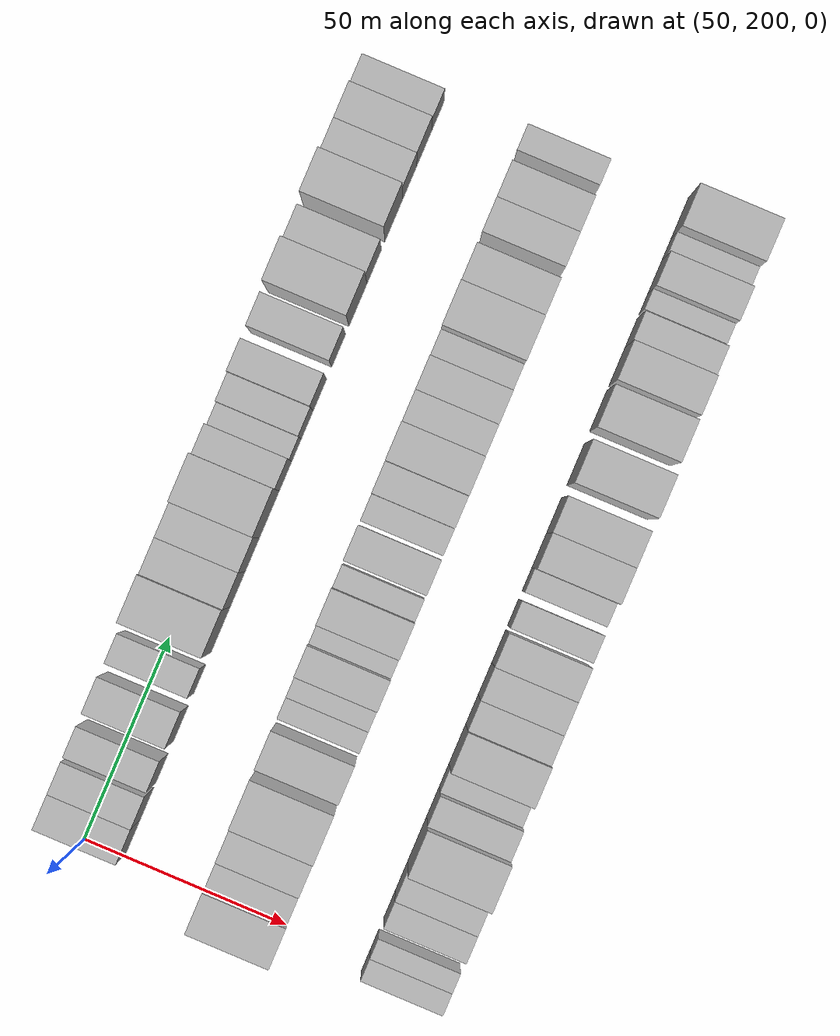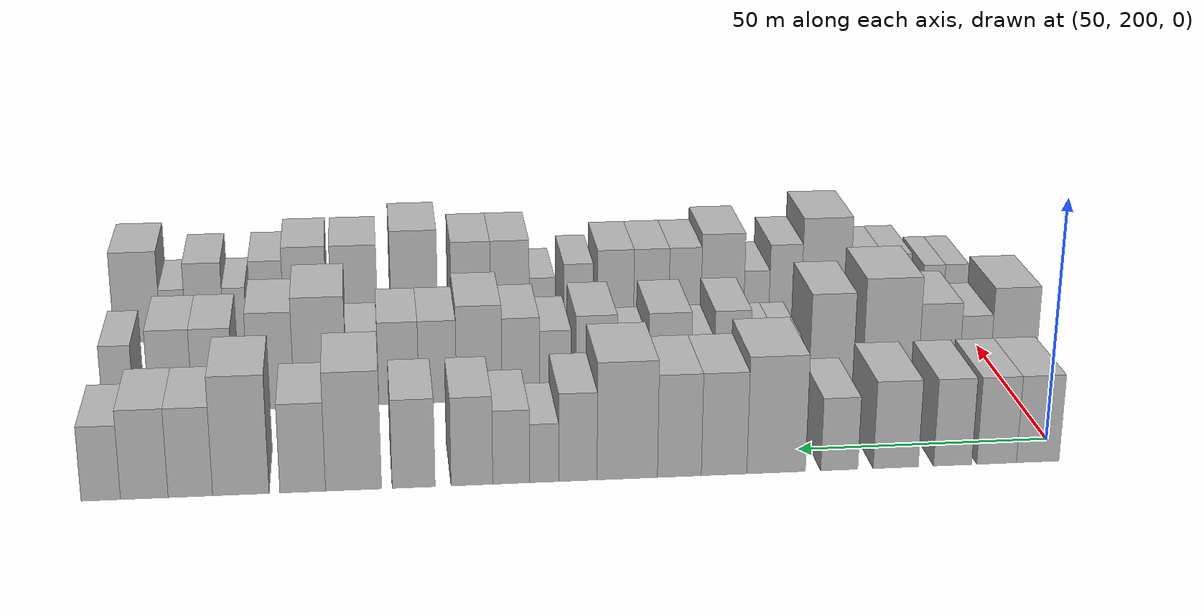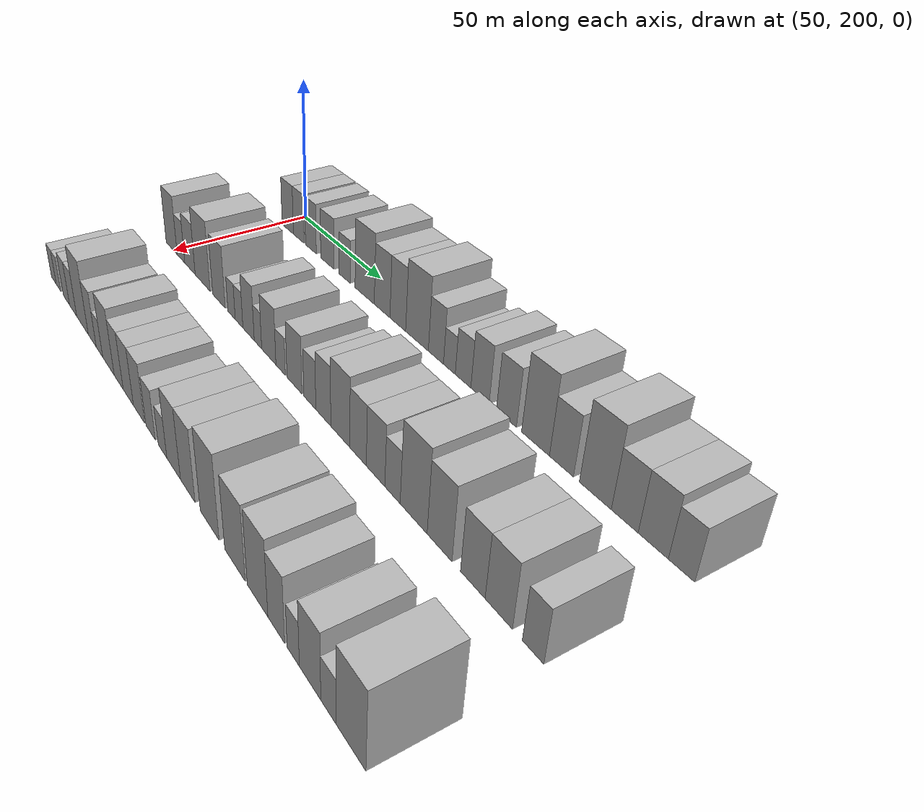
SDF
<sdf version="1.6">
 <world name="default">
  <model name="building_67">
   <static>1</static>
   <pose>50.0000 205.0035 0 0.000000 0.000000 0.000000</pose>
   <link name="link">
    <pose>0 0 9.00 0 0 0</pose>
    <collision name="collision"><geometry><box><size>20.0000 8.4217 18.0000</size></box></geometry></collision>
    <visual name="visual">
     <cast_shadows>0</cast_shadows>
     <geometry><box><size>20.0000 8.4217 18.0000</size></box></geometry>
     <material>
      <script>
       <uri>model://HANNAS_wall/materials/scripts</uri>
       <uri>model://HANNAS_wall/materials/textures</uri>
       <name>vrc/HANNAS_wall</name>
      </script>
     </material>
    </visual>
   </link>
  </model>
  <model name="building_68">
   <static>1</static>
   <pose>50.0000 213.1274 0 0.000000 0.000000 0.000000</pose>
   <link name="link">
    <pose>0 0 9.00 0 0 0</pose>
    <collision name="collision"><geometry><box><size>20.0000 7.8262 18.0000</size></box></geometry></collision>
    <visual name="visual">
     <cast_shadows>0</cast_shadows>
     <geometry><box><size>20.0000 7.8262 18.0000</size></box></geometry>
     <material>
      <script>
       <uri>model://HANNAS_wall/materials/scripts</uri>
       <uri>model://HANNAS_wall/materials/textures</uri>
       <name>vrc/HANNAS_wall</name>
      </script>
     </material>
    </visual>
   </link>
  </model>
  <model name="building_69">
   <static>1</static>
   <pose>50.0000 221.7966 0 0.000000 0.000000 0.000000</pose>
   <link name="link">
    <pose>0 0 9.00 0 0 0</pose>
    <collision name="collision"><geometry><box><size>20.0000 7.5121 18.0000</size></box></geometry></collision>
    <visual name="visual">
     <cast_shadows>0</cast_shadows>
     <geometry><box><size>20.0000 7.5121 18.0000</size></box></geometry>
     <material>
      <script>
       <uri>model://HANNAS_wall/materials/scripts</uri>
       <uri>model://HANNAS_wall/materials/textures</uri>
       <name>vrc/HANNAS_wall</name>
      </script>
     </material>
    </visual>
   </link>
  </model>
  <model name="building_70">
   <static>1</static>
   <pose>50.0000 232.9745 0 0.000000 0.000000 0.000000</pose>
   <link name="link">
    <pose>0 0 9.00 0 0 0</pose>
    <collision name="collision"><geometry><box><size>20.0000 8.8437 18.0000</size></box></geometry></collision>
    <visual name="visual">
     <cast_shadows>0</cast_shadows>
     <geometry><box><size>20.0000 8.8437 18.0000</size></box></geometry>
     <material>
      <script>
       <uri>model://HANNAS_wall/materials/scripts</uri>
       <uri>model://HANNAS_wall/materials/textures</uri>
       <name>vrc/HANNAS_wall</name>
      </script>
     </material>
    </visual>
   </link>
  </model>
  <model name="building_71">
   <static>1</static>
   <pose>50.0000 244.0048 0 0.000000 0.000000 0.000000</pose>
   <link name="link">
    <pose>0 0 7.50 0 0 0</pose>
    <collision name="collision"><geometry><box><size>20.0000 7.2170 15.0000</size></box></geometry></collision>
    <visual name="visual">
     <cast_shadows>0</cast_shadows>
     <geometry><box><size>20.0000 7.2170 15.0000</size></box></geometry>
     <material>
      <script>
       <uri>model://HANNAS_wall/materials/scripts</uri>
       <uri>model://HANNAS_wall/materials/textures</uri>
       <name>vrc/HANNAS_wall</name>
      </script>
     </material>
    </visual>
   </link>
  </model>
  <model name="building_72">
   <static>1</static>
   <pose>50.0000 256.2885 0 0.000000 0.000000 0.000000</pose>
   <link name="link">
    <pose>0 0 12.00 0 0 0</pose>
    <collision name="collision"><geometry><box><size>20.0000 11.3502 24.0000</size></box></geometry></collision>
    <visual name="visual">
     <cast_shadows>0</cast_shadows>
     <geometry><box><size>20.0000 11.3502 24.0000</size></box></geometry>
     <material>
      <script>
       <uri>model://HANNAS_wall/materials/scripts</uri>
       <uri>model://HANNAS_wall/materials/textures</uri>
       <name>vrc/HANNAS_wall</name>
      </script>
     </material>
    </visual>
   </link>
  </model>
  <model name="building_73">
   <static>1</static>
   <pose>50.0000 266.3604 0 0.000000 0.000000 0.000000</pose>
   <link name="link">
    <pose>0 0 10.50 0 0 0</pose>
    <collision name="collision"><geometry><box><size>20.0000 8.7935 21.0000</size></box></geometry></collision>
    <visual name="visual">
     <cast_shadows>0</cast_shadows>
     <geometry><box><size>20.0000 8.7935 21.0000</size></box></geometry>
     <material>
      <script>
       <uri>model://HANNAS_wall/materials/scripts</uri>
       <uri>model://HANNAS_wall/materials/textures</uri>
       <name>vrc/HANNAS_wall</name>
      </script>
     </material>
    </visual>
   </link>
  </model>
  <model name="building_74">
   <static>1</static>
   <pose>50.0000 274.9698 0 0.000000 0.000000 0.000000</pose>
   <link name="link">
    <pose>0 0 10.50 0 0 0</pose>
    <collision name="collision"><geometry><box><size>20.0000 8.4253 21.0000</size></box></geometry></collision>
    <visual name="visual">
     <cast_shadows>0</cast_shadows>
     <geometry><box><size>20.0000 8.4253 21.0000</size></box></geometry>
     <material>
      <script>
       <uri>model://HANNAS_wall/materials/scripts</uri>
       <uri>model://HANNAS_wall/materials/textures</uri>
       <name>vrc/HANNAS_wall</name>
      </script>
     </material>
    </visual>
   </link>
  </model>
  <model name="building_75">
   <static>1</static>
   <pose>50.0000 284.9682 0 0.000000 0.000000 0.000000</pose>
   <link name="link">
    <pose>0 0 12.00 0 0 0</pose>
    <collision name="collision"><geometry><box><size>20.0000 11.5714 24.0000</size></box></geometry></collision>
    <visual name="visual">
     <cast_shadows>0</cast_shadows>
     <geometry><box><size>20.0000 11.5714 24.0000</size></box></geometry>
     <material>
      <script>
       <uri>model://HANNAS_wall/materials/scripts</uri>
       <uri>model://HANNAS_wall/materials/textures</uri>
       <name>vrc/HANNAS_wall</name>
      </script>
     </material>
    </visual>
   </link>
  </model>
  <model name="building_76">
   <static>1</static>
   <pose>50.0000 294.4051 0 0.000000 0.000000 0.000000</pose>
   <link name="link">
    <pose>0 0 9.00 0 0 0</pose>
    <collision name="collision"><geometry><box><size>20.0000 7.3024 18.0000</size></box></geometry></collision>
    <visual name="visual">
     <cast_shadows>0</cast_shadows>
     <geometry><box><size>20.0000 7.3024 18.0000</size></box></geometry>
     <material>
      <script>
       <uri>model://HANNAS_wall/materials/scripts</uri>
       <uri>model://HANNAS_wall/materials/textures</uri>
       <name>vrc/HANNAS_wall</name>
      </script>
     </material>
    </visual>
   </link>
  </model>
  <model name="building_77">
   <static>1</static>
   <pose>50.0000 300.8055 0 0.000000 0.000000 0.000000</pose>
   <link name="link">
    <pose>0 0 6.00 0 0 0</pose>
    <collision name="collision"><geometry><box><size>20.0000 5.4984 12.0000</size></box></geometry></collision>
    <visual name="visual">
     <cast_shadows>0</cast_shadows>
     <geometry><box><size>20.0000 5.4984 12.0000</size></box></geometry>
     <material>
      <script>
       <uri>model://HANNAS_wall/materials/scripts</uri>
       <uri>model://HANNAS_wall/materials/textures</uri>
       <name>vrc/HANNAS_wall</name>
      </script>
     </material>
    </visual>
   </link>
  </model>
  <model name="building_78">
   <static>1</static>
   <pose>50.0000 307.0646 0 0.000000 0.000000 0.000000</pose>
   <link name="link">
    <pose>0 0 7.50 0 0 0</pose>
    <collision name="collision"><geometry><box><size>20.0000 7.0199 15.0000</size></box></geometry></collision>
    <visual name="visual">
     <cast_shadows>0</cast_shadows>
     <geometry><box><size>20.0000 7.0199 15.0000</size></box></geometry>
     <material>
      <script>
       <uri>model://HANNAS_wall/materials/scripts</uri>
       <uri>model://HANNAS_wall/materials/textures</uri>
       <name>vrc/HANNAS_wall</name>
      </script>
     </material>
    </visual>
   </link>
  </model>
  <model name="building_79">
   <static>1</static>
   <pose>50.0000 314.5173 0 0.000000 0.000000 0.000000</pose>
   <link name="link">
    <pose>0 0 9.00 0 0 0</pose>
    <collision name="collision"><geometry><box><size>20.0000 7.8854 18.0000</size></box></geometry></collision>
    <visual name="visual">
     <cast_shadows>0</cast_shadows>
     <geometry><box><size>20.0000 7.8854 18.0000</size></box></geometry>
     <material>
      <script>
       <uri>model://HANNAS_wall/materials/scripts</uri>
       <uri>model://HANNAS_wall/materials/textures</uri>
       <name>vrc/HANNAS_wall</name>
      </script>
     </material>
    </visual>
   </link>
  </model>
  <model name="building_80">
   <static>1</static>
   <pose>50.0000 325.5001 0 0.000000 0.000000 0.000000</pose>
   <link name="link">
    <pose>0 0 9.00 0 0 0</pose>
    <collision name="collision"><geometry><box><size>20.0000 8.0803 18.0000</size></box></geometry></collision>
    <visual name="visual">
     <cast_shadows>0</cast_shadows>
     <geometry><box><size>20.0000 8.0803 18.0000</size></box></geometry>
     <material>
      <script>
       <uri>model://HANNAS_wall/materials/scripts</uri>
       <uri>model://HANNAS_wall/materials/textures</uri>
       <name>vrc/HANNAS_wall</name>
      </script>
     </material>
    </visual>
   </link>
  </model>
  <model name="building_81">
   <static>1</static>
   <pose>50.0000 336.7760 0 0.000000 0.000000 0.000000</pose>
   <link name="link">
    <pose>0 0 12.00 0 0 0</pose>
    <collision name="collision"><geometry><box><size>20.0000 10.4715 24.0000</size></box></geometry></collision>
    <visual name="visual">
     <cast_shadows>0</cast_shadows>
     <geometry><box><size>20.0000 10.4715 24.0000</size></box></geometry>
     <material>
      <script>
       <uri>model://HANNAS_wall/materials/scripts</uri>
       <uri>model://HANNAS_wall/materials/textures</uri>
       <name>vrc/HANNAS_wall</name>
      </script>
     </material>
    </visual>
   </link>
  </model>
  <model name="building_82">
   <static>1</static>
   <pose>50.0000 346.2685 0 0.000000 0.000000 0.000000</pose>
   <link name="link">
    <pose>0 0 9.00 0 0 0</pose>
    <collision name="collision"><geometry><box><size>20.0000 8.5136 18.0000</size></box></geometry></collision>
    <visual name="visual">
     <cast_shadows>0</cast_shadows>
     <geometry><box><size>20.0000 8.5136 18.0000</size></box></geometry>
     <material>
      <script>
       <uri>model://HANNAS_wall/materials/scripts</uri>
       <uri>model://HANNAS_wall/materials/textures</uri>
       <name>vrc/HANNAS_wall</name>
      </script>
     </material>
    </visual>
   </link>
  </model>
  <model name="building_83">
   <static>1</static>
   <pose>50.0000 357.7595 0 0.000000 0.000000 0.000000</pose>
   <link name="link">
    <pose>0 0 12.00 0 0 0</pose>
    <collision name="collision"><geometry><box><size>20.0000 10.4684 24.0000</size></box></geometry></collision>
    <visual name="visual">
     <cast_shadows>0</cast_shadows>
     <geometry><box><size>20.0000 10.4684 24.0000</size></box></geometry>
     <material>
      <script>
       <uri>model://HANNAS_wall/materials/scripts</uri>
       <uri>model://HANNAS_wall/materials/textures</uri>
       <name>vrc/HANNAS_wall</name>
      </script>
     </material>
    </visual>
   </link>
  </model>
  <model name="building_84">
   <static>1</static>
   <pose>50.0000 367.1100 0 0.000000 0.000000 0.000000</pose>
   <link name="link">
    <pose>0 0 9.00 0 0 0</pose>
    <collision name="collision"><geometry><box><size>20.0000 8.2326 18.0000</size></box></geometry></collision>
    <visual name="visual">
     <cast_shadows>0</cast_shadows>
     <geometry><box><size>20.0000 8.2326 18.0000</size></box></geometry>
     <material>
      <script>
       <uri>model://HANNAS_wall/materials/scripts</uri>
       <uri>model://HANNAS_wall/materials/textures</uri>
       <name>vrc/HANNAS_wall</name>
      </script>
     </material>
    </visual>
   </link>
  </model>
  <model name="building_85">
   <static>1</static>
   <pose>50.0000 375.6054 0 0.000000 0.000000 0.000000</pose>
   <link name="link">
    <pose>0 0 9.00 0 0 0</pose>
    <collision name="collision"><geometry><box><size>20.0000 8.7582 18.0000</size></box></geometry></collision>
    <visual name="visual">
     <cast_shadows>0</cast_shadows>
     <geometry><box><size>20.0000 8.7582 18.0000</size></box></geometry>
     <material>
      <script>
       <uri>model://HANNAS_wall/materials/scripts</uri>
       <uri>model://HANNAS_wall/materials/textures</uri>
       <name>vrc/HANNAS_wall</name>
      </script>
     </material>
    </visual>
   </link>
  </model>
  <model name="building_86">
   <static>1</static>
   <pose>50.0000 383.5986 0 0.000000 0.000000 0.000000</pose>
   <link name="link">
    <pose>0 0 7.50 0 0 0</pose>
    <collision name="collision"><geometry><box><size>20.0000 7.2284 15.0000</size></box></geometry></collision>
    <visual name="visual">
     <cast_shadows>0</cast_shadows>
     <geometry><box><size>20.0000 7.2284 15.0000</size></box></geometry>
     <material>
      <script>
       <uri>model://HANNAS_wall/materials/scripts</uri>
       <uri>model://HANNAS_wall/materials/textures</uri>
       <name>vrc/HANNAS_wall</name>
      </script>
     </material>
    </visual>
   </link>
  </model>
  <model name="building_152">
   <static>1</static>
   <pose>90.0000 198.2181 0 0.000000 0.000000 0.000000</pose>
   <link name="link">
    <pose>0 0 10.50 0 0 0</pose>
    <collision name="collision"><geometry><box><size>20.0000 9.8253 21.0000</size></box></geometry></collision>
    <visual name="visual">
     <cast_shadows>0</cast_shadows>
     <geometry><box><size>20.0000 9.8253 21.0000</size></box></geometry>
     <material>
      <script>
       <uri>model://HANNAS_wall/materials/scripts</uri>
       <uri>model://HANNAS_wall/materials/textures</uri>
       <name>vrc/HANNAS_wall</name>
      </script>
     </material>
    </visual>
   </link>
  </model>
  <model name="building_153">
   <static>1</static>
   <pose>90.0000 206.4361 0 0.000000 0.000000 0.000000</pose>
   <link name="link">
    <pose>0 0 7.50 0 0 0</pose>
    <collision name="collision"><geometry><box><size>20.0000 6.6107 15.0000</size></box></geometry></collision>
    <visual name="visual">
     <cast_shadows>0</cast_shadows>
     <geometry><box><size>20.0000 6.6107 15.0000</size></box></geometry>
     <material>
      <script>
       <uri>model://HANNAS_wall/materials/scripts</uri>
       <uri>model://HANNAS_wall/materials/textures</uri>
       <name>vrc/HANNAS_wall</name>
      </script>
     </material>
    </visual>
   </link>
  </model>
  <model name="building_154">
   <static>1</static>
   <pose>90.0000 214.1141 0 0.000000 0.000000 0.000000</pose>
   <link name="link">
    <pose>0 0 9.00 0 0 0</pose>
    <collision name="collision"><geometry><box><size>20.0000 8.7453 18.0000</size></box></geometry></collision>
    <visual name="visual">
     <cast_shadows>0</cast_shadows>
     <geometry><box><size>20.0000 8.7453 18.0000</size></box></geometry>
     <material>
      <script>
       <uri>model://HANNAS_wall/materials/scripts</uri>
       <uri>model://HANNAS_wall/materials/textures</uri>
       <name>vrc/HANNAS_wall</name>
      </script>
     </material>
    </visual>
   </link>
  </model>
  <model name="building_155">
   <static>1</static>
   <pose>90.0000 224.4308 0 0.000000 0.000000 0.000000</pose>
   <link name="link">
    <pose>0 0 12.00 0 0 0</pose>
    <collision name="collision"><geometry><box><size>20.0000 11.8881 24.0000</size></box></geometry></collision>
    <visual name="visual">
     <cast_shadows>0</cast_shadows>
     <geometry><box><size>20.0000 11.8881 24.0000</size></box></geometry>
     <material>
      <script>
       <uri>model://HANNAS_wall/materials/scripts</uri>
       <uri>model://HANNAS_wall/materials/textures</uri>
       <name>vrc/HANNAS_wall</name>
      </script>
     </material>
    </visual>
   </link>
  </model>
  <model name="building_156">
   <static>1</static>
   <pose>90.0000 237.0419 0 0.000000 0.000000 0.000000</pose>
   <link name="link">
    <pose>0 0 10.50 0 0 0</pose>
    <collision name="collision"><geometry><box><size>20.0000 9.3341 21.0000</size></box></geometry></collision>
    <visual name="visual">
     <cast_shadows>0</cast_shadows>
     <geometry><box><size>20.0000 9.3341 21.0000</size></box></geometry>
     <material>
      <script>
       <uri>model://HANNAS_wall/materials/scripts</uri>
       <uri>model://HANNAS_wall/materials/textures</uri>
       <name>vrc/HANNAS_wall</name>
      </script>
     </material>
    </visual>
   </link>
  </model>
  <model name="building_157">
   <static>1</static>
   <pose>90.0000 246.3033 0 0.000000 0.000000 0.000000</pose>
   <link name="link">
    <pose>0 0 6.00 0 0 0</pose>
    <collision name="collision"><geometry><box><size>20.0000 5.1887 12.0000</size></box></geometry></collision>
    <visual name="visual">
     <cast_shadows>0</cast_shadows>
     <geometry><box><size>20.0000 5.1887 12.0000</size></box></geometry>
     <material>
      <script>
       <uri>model://HANNAS_wall/materials/scripts</uri>
       <uri>model://HANNAS_wall/materials/textures</uri>
       <name>vrc/HANNAS_wall</name>
      </script>
     </material>
    </visual>
   </link>
  </model>
  <model name="building_158">
   <static>1</static>
   <pose>90.0000 251.5685 0 0.000000 0.000000 0.000000</pose>
   <link name="link">
    <pose>0 0 6.00 0 0 0</pose>
    <collision name="collision"><geometry><box><size>20.0000 5.3417 12.0000</size></box></geometry></collision>
    <visual name="visual">
     <cast_shadows>0</cast_shadows>
     <geometry><box><size>20.0000 5.3417 12.0000</size></box></geometry>
     <material>
      <script>
       <uri>model://HANNAS_wall/materials/scripts</uri>
       <uri>model://HANNAS_wall/materials/textures</uri>
       <name>vrc/HANNAS_wall</name>
      </script>
     </material>
    </visual>
   </link>
  </model>
  <model name="building_159">
   <static>1</static>
   <pose>90.0000 258.0336 0 0.000000 0.000000 0.000000</pose>
   <link name="link">
    <pose>0 0 9.00 0 0 0</pose>
    <collision name="collision"><geometry><box><size>20.0000 7.5884 18.0000</size></box></geometry></collision>
    <visual name="visual">
     <cast_shadows>0</cast_shadows>
     <geometry><box><size>20.0000 7.5884 18.0000</size></box></geometry>
     <material>
      <script>
       <uri>model://HANNAS_wall/materials/scripts</uri>
       <uri>model://HANNAS_wall/materials/textures</uri>
       <name>vrc/HANNAS_wall</name>
      </script>
     </material>
    </visual>
   </link>
  </model>
  <model name="building_160">
   <static>1</static>
   <pose>90.0000 264.2403 0 0.000000 0.000000 0.000000</pose>
   <link name="link">
    <pose>0 0 6.00 0 0 0</pose>
    <collision name="collision"><geometry><box><size>20.0000 4.8250 12.0000</size></box></geometry></collision>
    <visual name="visual">
     <cast_shadows>0</cast_shadows>
     <geometry><box><size>20.0000 4.8250 12.0000</size></box></geometry>
     <material>
      <script>
       <uri>model://HANNAS_wall/materials/scripts</uri>
       <uri>model://HANNAS_wall/materials/textures</uri>
       <name>vrc/HANNAS_wall</name>
      </script>
     </material>
    </visual>
   </link>
  </model>
  <model name="building_161">
   <static>1</static>
   <pose>90.0000 271.0979 0 0.000000 0.000000 0.000000</pose>
   <link name="link">
    <pose>0 0 9.00 0 0 0</pose>
    <collision name="collision"><geometry><box><size>20.0000 8.8902 18.0000</size></box></geometry></collision>
    <visual name="visual">
     <cast_shadows>0</cast_shadows>
     <geometry><box><size>20.0000 8.8902 18.0000</size></box></geometry>
     <material>
      <script>
       <uri>model://HANNAS_wall/materials/scripts</uri>
       <uri>model://HANNAS_wall/materials/textures</uri>
       <name>vrc/HANNAS_wall</name>
      </script>
     </material>
    </visual>
   </link>
  </model>
  <model name="building_162">
   <static>1</static>
   <pose>90.0000 278.3429 0 0.000000 0.000000 0.000000</pose>
   <link name="link">
    <pose>0 0 6.00 0 0 0</pose>
    <collision name="collision"><geometry><box><size>20.0000 5.5999 12.0000</size></box></geometry></collision>
    <visual name="visual">
     <cast_shadows>0</cast_shadows>
     <geometry><box><size>20.0000 5.5999 12.0000</size></box></geometry>
     <material>
      <script>
       <uri>model://HANNAS_wall/materials/scripts</uri>
       <uri>model://HANNAS_wall/materials/textures</uri>
       <name>vrc/HANNAS_wall</name>
      </script>
     </material>
    </visual>
   </link>
  </model>
  <model name="building_163">
   <static>1</static>
   <pose>90.0000 286.4076 0 0.000000 0.000000 0.000000</pose>
   <link name="link">
    <pose>0 0 9.00 0 0 0</pose>
    <collision name="collision"><geometry><box><size>20.0000 8.5295 18.0000</size></box></geometry></collision>
    <visual name="visual">
     <cast_shadows>0</cast_shadows>
     <geometry><box><size>20.0000 8.5295 18.0000</size></box></geometry>
     <material>
      <script>
       <uri>model://HANNAS_wall/materials/scripts</uri>
       <uri>model://HANNAS_wall/materials/textures</uri>
       <name>vrc/HANNAS_wall</name>
      </script>
     </material>
    </visual>
   </link>
  </model>
  <model name="building_164">
   <static>1</static>
   <pose>90.0000 294.9426 0 0.000000 0.000000 0.000000</pose>
   <link name="link">
    <pose>0 0 7.50 0 0 0</pose>
    <collision name="collision"><geometry><box><size>20.0000 6.5404 15.0000</size></box></geometry></collision>
    <visual name="visual">
     <cast_shadows>0</cast_shadows>
     <geometry><box><size>20.0000 6.5404 15.0000</size></box></geometry>
     <material>
      <script>
       <uri>model://HANNAS_wall/materials/scripts</uri>
       <uri>model://HANNAS_wall/materials/textures</uri>
       <name>vrc/HANNAS_wall</name>
      </script>
     </material>
    </visual>
   </link>
  </model>
  <model name="building_165">
   <static>1</static>
   <pose>90.0000 302.1113 0 0.000000 0.000000 0.000000</pose>
   <link name="link">
    <pose>0 0 9.00 0 0 0</pose>
    <collision name="collision"><geometry><box><size>20.0000 7.7969 18.0000</size></box></geometry></collision>
    <visual name="visual">
     <cast_shadows>0</cast_shadows>
     <geometry><box><size>20.0000 7.7969 18.0000</size></box></geometry>
     <material>
      <script>
       <uri>model://HANNAS_wall/materials/scripts</uri>
       <uri>model://HANNAS_wall/materials/textures</uri>
       <name>vrc/HANNAS_wall</name>
      </script>
     </material>
    </visual>
   </link>
  </model>
  <model name="building_166">
   <static>1</static>
   <pose>90.0000 310.6910 0 0.000000 0.000000 0.000000</pose>
   <link name="link">
    <pose>0 0 10.50 0 0 0</pose>
    <collision name="collision"><geometry><box><size>20.0000 9.3626 21.0000</size></box></geometry></collision>
    <visual name="visual">
     <cast_shadows>0</cast_shadows>
     <geometry><box><size>20.0000 9.3626 21.0000</size></box></geometry>
     <material>
      <script>
       <uri>model://HANNAS_wall/materials/scripts</uri>
       <uri>model://HANNAS_wall/materials/textures</uri>
       <name>vrc/HANNAS_wall</name>
      </script>
     </material>
    </visual>
   </link>
  </model>
  <model name="building_167">
   <static>1</static>
   <pose>90.0000 319.2532 0 0.000000 0.000000 0.000000</pose>
   <link name="link">
    <pose>0 0 9.00 0 0 0</pose>
    <collision name="collision"><geometry><box><size>20.0000 7.7618 18.0000</size></box></geometry></collision>
    <visual name="visual">
     <cast_shadows>0</cast_shadows>
     <geometry><box><size>20.0000 7.7618 18.0000</size></box></geometry>
     <material>
      <script>
       <uri>model://HANNAS_wall/materials/scripts</uri>
       <uri>model://HANNAS_wall/materials/textures</uri>
       <name>vrc/HANNAS_wall</name>
      </script>
     </material>
    </visual>
   </link>
  </model>
  <model name="building_168">
   <static>1</static>
   <pose>90.0000 327.2488 0 0.000000 0.000000 0.000000</pose>
   <link name="link">
    <pose>0 0 9.00 0 0 0</pose>
    <collision name="collision"><geometry><box><size>20.0000 8.2294 18.0000</size></box></geometry></collision>
    <visual name="visual">
     <cast_shadows>0</cast_shadows>
     <geometry><box><size>20.0000 8.2294 18.0000</size></box></geometry>
     <material>
      <script>
       <uri>model://HANNAS_wall/materials/scripts</uri>
       <uri>model://HANNAS_wall/materials/textures</uri>
       <name>vrc/HANNAS_wall</name>
      </script>
     </material>
    </visual>
   </link>
  </model>
  <model name="building_169">
   <static>1</static>
   <pose>90.0000 334.6035 0 0.000000 0.000000 0.000000</pose>
   <link name="link">
    <pose>0 0 7.50 0 0 0</pose>
    <collision name="collision"><geometry><box><size>20.0000 6.4800 15.0000</size></box></geometry></collision>
    <visual name="visual">
     <cast_shadows>0</cast_shadows>
     <geometry><box><size>20.0000 6.4800 15.0000</size></box></geometry>
     <material>
      <script>
       <uri>model://HANNAS_wall/materials/scripts</uri>
       <uri>model://HANNAS_wall/materials/textures</uri>
       <name>vrc/HANNAS_wall</name>
      </script>
     </material>
    </visual>
   </link>
  </model>
  <model name="building_170">
   <static>1</static>
   <pose>90.0000 343.2190 0 0.000000 0.000000 0.000000</pose>
   <link name="link">
    <pose>0 0 12.00 0 0 0</pose>
    <collision name="collision"><geometry><box><size>20.0000 10.7508 24.0000</size></box></geometry></collision>
    <visual name="visual">
     <cast_shadows>0</cast_shadows>
     <geometry><box><size>20.0000 10.7508 24.0000</size></box></geometry>
     <material>
      <script>
       <uri>model://HANNAS_wall/materials/scripts</uri>
       <uri>model://HANNAS_wall/materials/textures</uri>
       <name>vrc/HANNAS_wall</name>
      </script>
     </material>
    </visual>
   </link>
  </model>
  <model name="building_171">
   <static>1</static>
   <pose>90.0000 353.2213 0 0.000000 0.000000 0.000000</pose>
   <link name="link">
    <pose>0 0 10.50 0 0 0</pose>
    <collision name="collision"><geometry><box><size>20.0000 9.2539 21.0000</size></box></geometry></collision>
    <visual name="visual">
     <cast_shadows>0</cast_shadows>
     <geometry><box><size>20.0000 9.2539 21.0000</size></box></geometry>
     <material>
      <script>
       <uri>model://HANNAS_wall/materials/scripts</uri>
       <uri>model://HANNAS_wall/materials/textures</uri>
       <name>vrc/HANNAS_wall</name>
      </script>
     </material>
    </visual>
   </link>
  </model>
  <model name="building_172">
   <static>1</static>
   <pose>90.0000 365.0316 0 0.000000 0.000000 0.000000</pose>
   <link name="link">
    <pose>0 0 9.00 0 0 0</pose>
    <collision name="collision"><geometry><box><size>20.0000 8.3668 18.0000</size></box></geometry></collision>
    <visual name="visual">
     <cast_shadows>0</cast_shadows>
     <geometry><box><size>20.0000 8.3668 18.0000</size></box></geometry>
     <material>
      <script>
       <uri>model://HANNAS_wall/materials/scripts</uri>
       <uri>model://HANNAS_wall/materials/textures</uri>
       <name>vrc/HANNAS_wall</name>
      </script>
     </material>
    </visual>
   </link>
  </model>
  <model name="building_173">
   <static>1</static>
   <pose>90.0000 373.5824 0 0.000000 0.000000 0.000000</pose>
   <link name="link">
    <pose>0 0 9.00 0 0 0</pose>
    <collision name="collision"><geometry><box><size>20.0000 8.7348 18.0000</size></box></geometry></collision>
    <visual name="visual">
     <cast_shadows>0</cast_shadows>
     <geometry><box><size>20.0000 8.7348 18.0000</size></box></geometry>
     <material>
      <script>
       <uri>model://HANNAS_wall/materials/scripts</uri>
       <uri>model://HANNAS_wall/materials/textures</uri>
       <name>vrc/HANNAS_wall</name>
      </script>
     </material>
    </visual>
   </link>
  </model>
  <model name="building_174">
   <static>1</static>
   <pose>90.0000 384.1031 0 0.000000 0.000000 0.000000</pose>
   <link name="link">
    <pose>0 0 7.50 0 0 0</pose>
    <collision name="collision"><geometry><box><size>20.0000 6.3067 15.0000</size></box></geometry></collision>
    <visual name="visual">
     <cast_shadows>0</cast_shadows>
     <geometry><box><size>20.0000 6.3067 15.0000</size></box></geometry>
     <material>
      <script>
       <uri>model://HANNAS_wall/materials/scripts</uri>
       <uri>model://HANNAS_wall/materials/textures</uri>
       <name>vrc/HANNAS_wall</name>
      </script>
     </material>
    </visual>
   </link>
  </model>
  <model name="building_242">
   <static>1</static>
   <pose>130.0000 199.7686 0 0.000000 0.000000 0.000000</pose>
   <link name="link">
    <pose>0 0 6.00 0 0 0</pose>
    <collision name="collision"><geometry><box><size>20.0000 5.3655 12.0000</size></box></geometry></collision>
    <visual name="visual">
     <cast_shadows>0</cast_shadows>
     <geometry><box><size>20.0000 5.3655 12.0000</size></box></geometry>
     <material>
      <script>
       <uri>model://HANNAS_wall/materials/scripts</uri>
       <uri>model://HANNAS_wall/materials/textures</uri>
       <name>vrc/HANNAS_wall</name>
      </script>
     </material>
    </visual>
   </link>
  </model>
  <model name="building_243">
   <static>1</static>
   <pose>130.0000 204.9012 0 0.000000 0.000000 0.000000</pose>
   <link name="link">
    <pose>0 0 6.00 0 0 0</pose>
    <collision name="collision"><geometry><box><size>20.0000 4.8998 12.0000</size></box></geometry></collision>
    <visual name="visual">
     <cast_shadows>0</cast_shadows>
     <geometry><box><size>20.0000 4.8998 12.0000</size></box></geometry>
     <material>
      <script>
       <uri>model://HANNAS_wall/materials/scripts</uri>
       <uri>model://HANNAS_wall/materials/textures</uri>
       <name>vrc/HANNAS_wall</name>
      </script>
     </material>
    </visual>
   </link>
  </model>
  <model name="building_244">
   <static>1</static>
   <pose>130.0000 213.6148 0 0.000000 0.000000 0.000000</pose>
   <link name="link">
    <pose>0 0 7.50 0 0 0</pose>
    <collision name="collision"><geometry><box><size>20.0000 6.5273 15.0000</size></box></geometry></collision>
    <visual name="visual">
     <cast_shadows>0</cast_shadows>
     <geometry><box><size>20.0000 6.5273 15.0000</size></box></geometry>
     <material>
      <script>
       <uri>model://HANNAS_wall/materials/scripts</uri>
       <uri>model://HANNAS_wall/materials/textures</uri>
       <name>vrc/HANNAS_wall</name>
      </script>
     </material>
    </visual>
   </link>
  </model>
  <model name="building_245">
   <static>1</static>
   <pose>130.0000 220.5159 0 0.000000 0.000000 0.000000</pose>
   <link name="link">
    <pose>0 0 7.50 0 0 0</pose>
    <collision name="collision"><geometry><box><size>20.0000 7.2750 15.0000</size></box></geometry></collision>
    <visual name="visual">
     <cast_shadows>0</cast_shadows>
     <geometry><box><size>20.0000 7.2750 15.0000</size></box></geometry>
     <material>
      <script>
       <uri>model://HANNAS_wall/materials/scripts</uri>
       <uri>model://HANNAS_wall/materials/textures</uri>
       <name>vrc/HANNAS_wall</name>
      </script>
     </material>
    </visual>
   </link>
  </model>
  <model name="building_246">
   <static>1</static>
   <pose>130.0000 229.7560 0 0.000000 0.000000 0.000000</pose>
   <link name="link">
    <pose>0 0 12.00 0 0 0</pose>
    <collision name="collision"><geometry><box><size>20.0000 11.2053 24.0000</size></box></geometry></collision>
    <visual name="visual">
     <cast_shadows>0</cast_shadows>
     <geometry><box><size>20.0000 11.2053 24.0000</size></box></geometry>
     <material>
      <script>
       <uri>model://HANNAS_wall/materials/scripts</uri>
       <uri>model://HANNAS_wall/materials/textures</uri>
       <name>vrc/HANNAS_wall</name>
      </script>
     </material>
    </visual>
   </link>
  </model>
  <model name="building_247">
   <static>1</static>
   <pose>130.0000 239.0346 0 0.000000 0.000000 0.000000</pose>
   <link name="link">
    <pose>0 0 9.00 0 0 0</pose>
    <collision name="collision"><geometry><box><size>20.0000 7.3518 18.0000</size></box></geometry></collision>
    <visual name="visual">
     <cast_shadows>0</cast_shadows>
     <geometry><box><size>20.0000 7.3518 18.0000</size></box></geometry>
     <material>
      <script>
       <uri>model://HANNAS_wall/materials/scripts</uri>
       <uri>model://HANNAS_wall/materials/textures</uri>
       <name>vrc/HANNAS_wall</name>
      </script>
     </material>
    </visual>
   </link>
  </model>
  <model name="building_248">
   <static>1</static>
   <pose>130.0000 245.5976 0 0.000000 0.000000 0.000000</pose>
   <link name="link">
    <pose>0 0 6.00 0 0 0</pose>
    <collision name="collision"><geometry><box><size>20.0000 5.7743 12.0000</size></box></geometry></collision>
    <visual name="visual">
     <cast_shadows>0</cast_shadows>
     <geometry><box><size>20.0000 5.7743 12.0000</size></box></geometry>
     <material>
      <script>
       <uri>model://HANNAS_wall/materials/scripts</uri>
       <uri>model://HANNAS_wall/materials/textures</uri>
       <name>vrc/HANNAS_wall</name>
      </script>
     </material>
    </visual>
   </link>
  </model>
  <model name="building_249">
   <static>1</static>
   <pose>130.0000 253.3615 0 0.000000 0.000000 0.000000</pose>
   <link name="link">
    <pose>0 0 10.50 0 0 0</pose>
    <collision name="collision"><geometry><box><size>20.0000 9.7535 21.0000</size></box></geometry></collision>
    <visual name="visual">
     <cast_shadows>0</cast_shadows>
     <geometry><box><size>20.0000 9.7535 21.0000</size></box></geometry>
     <material>
      <script>
       <uri>model://HANNAS_wall/materials/scripts</uri>
       <uri>model://HANNAS_wall/materials/textures</uri>
       <name>vrc/HANNAS_wall</name>
      </script>
     </material>
    </visual>
   </link>
  </model>
  <model name="building_250">
   <static>1</static>
   <pose>130.0000 261.8866 0 0.000000 0.000000 0.000000</pose>
   <link name="link">
    <pose>0 0 9.00 0 0 0</pose>
    <collision name="collision"><geometry><box><size>20.0000 7.2967 18.0000</size></box></geometry></collision>
    <visual name="visual">
     <cast_shadows>0</cast_shadows>
     <geometry><box><size>20.0000 7.2967 18.0000</size></box></geometry>
     <material>
      <script>
       <uri>model://HANNAS_wall/materials/scripts</uri>
       <uri>model://HANNAS_wall/materials/textures</uri>
       <name>vrc/HANNAS_wall</name>
      </script>
     </material>
    </visual>
   </link>
  </model>
  <model name="building_251">
   <static>1</static>
   <pose>130.0000 269.5283 0 0.000000 0.000000 0.000000</pose>
   <link name="link">
    <pose>0 0 9.00 0 0 0</pose>
    <collision name="collision"><geometry><box><size>20.0000 7.9865 18.0000</size></box></geometry></collision>
    <visual name="visual">
     <cast_shadows>0</cast_shadows>
     <geometry><box><size>20.0000 7.9865 18.0000</size></box></geometry>
     <material>
      <script>
       <uri>model://HANNAS_wall/materials/scripts</uri>
       <uri>model://HANNAS_wall/materials/textures</uri>
       <name>vrc/HANNAS_wall</name>
      </script>
     </material>
    </visual>
   </link>
  </model>
  <model name="building_252">
   <static>1</static>
   <pose>130.0000 277.6128 0 0.000000 0.000000 0.000000</pose>
   <link name="link">
    <pose>0 0 9.00 0 0 0</pose>
    <collision name="collision"><geometry><box><size>20.0000 8.1826 18.0000</size></box></geometry></collision>
    <visual name="visual">
     <cast_shadows>0</cast_shadows>
     <geometry><box><size>20.0000 8.1826 18.0000</size></box></geometry>
     <material>
      <script>
       <uri>model://HANNAS_wall/materials/scripts</uri>
       <uri>model://HANNAS_wall/materials/textures</uri>
       <name>vrc/HANNAS_wall</name>
      </script>
     </material>
    </visual>
   </link>
  </model>
  <model name="building_253">
   <static>1</static>
   <pose>130.0000 286.0087 0 0.000000 0.000000 0.000000</pose>
   <link name="link">
    <pose>0 0 7.50 0 0 0</pose>
    <collision name="collision"><geometry><box><size>20.0000 6.6091 15.0000</size></box></geometry></collision>
    <visual name="visual">
     <cast_shadows>0</cast_shadows>
     <geometry><box><size>20.0000 6.6091 15.0000</size></box></geometry>
     <material>
      <script>
       <uri>model://HANNAS_wall/materials/scripts</uri>
       <uri>model://HANNAS_wall/materials/textures</uri>
       <name>vrc/HANNAS_wall</name>
      </script>
     </material>
    </visual>
   </link>
  </model>
  <model name="building_254">
   <static>1</static>
   <pose>130.0000 294.1794 0 0.000000 0.000000 0.000000</pose>
   <link name="link">
    <pose>0 0 6.00 0 0 0</pose>
    <collision name="collision"><geometry><box><size>20.0000 5.7324 12.0000</size></box></geometry></collision>
    <visual name="visual">
     <cast_shadows>0</cast_shadows>
     <geometry><box><size>20.0000 5.7324 12.0000</size></box></geometry>
     <material>
      <script>
       <uri>model://HANNAS_wall/materials/scripts</uri>
       <uri>model://HANNAS_wall/materials/textures</uri>
       <name>vrc/HANNAS_wall</name>
      </script>
     </material>
    </visual>
   </link>
  </model>
  <model name="building_255">
   <static>1</static>
   <pose>130.0000 301.3932 0 0.000000 0.000000 0.000000</pose>
   <link name="link">
    <pose>0 0 10.50 0 0 0</pose>
    <collision name="collision"><geometry><box><size>20.0000 8.6951 21.0000</size></box></geometry></collision>
    <visual name="visual">
     <cast_shadows>0</cast_shadows>
     <geometry><box><size>20.0000 8.6951 21.0000</size></box></geometry>
     <material>
      <script>
       <uri>model://HANNAS_wall/materials/scripts</uri>
       <uri>model://HANNAS_wall/materials/textures</uri>
       <name>vrc/HANNAS_wall</name>
      </script>
     </material>
    </visual>
   </link>
  </model>
  <model name="building_256">
   <static>1</static>
   <pose>130.0000 310.1211 0 0.000000 0.000000 0.000000</pose>
   <link name="link">
    <pose>0 0 10.50 0 0 0</pose>
    <collision name="collision"><geometry><box><size>20.0000 8.7607 21.0000</size></box></geometry></collision>
    <visual name="visual">
     <cast_shadows>0</cast_shadows>
     <geometry><box><size>20.0000 8.7607 21.0000</size></box></geometry>
     <material>
      <script>
       <uri>model://HANNAS_wall/materials/scripts</uri>
       <uri>model://HANNAS_wall/materials/textures</uri>
       <name>vrc/HANNAS_wall</name>
      </script>
     </material>
    </visual>
   </link>
  </model>
  <model name="building_257">
   <static>1</static>
   <pose>130.0000 322.6765 0 0.000000 0.000000 0.000000</pose>
   <link name="link">
    <pose>0 0 12.00 0 0 0</pose>
    <collision name="collision"><geometry><box><size>20.0000 10.3502 24.0000</size></box></geometry></collision>
    <visual name="visual">
     <cast_shadows>0</cast_shadows>
     <geometry><box><size>20.0000 10.3502 24.0000</size></box></geometry>
     <material>
      <script>
       <uri>model://HANNAS_wall/materials/scripts</uri>
       <uri>model://HANNAS_wall/materials/textures</uri>
       <name>vrc/HANNAS_wall</name>
      </script>
     </material>
    </visual>
   </link>
  </model>
  <model name="building_258">
   <static>1</static>
   <pose>130.0000 335.9627 0 0.000000 0.000000 0.000000</pose>
   <link name="link">
    <pose>0 0 10.50 0 0 0</pose>
    <collision name="collision"><geometry><box><size>20.0000 10.2223 21.0000</size></box></geometry></collision>
    <visual name="visual">
     <cast_shadows>0</cast_shadows>
     <geometry><box><size>20.0000 10.2223 21.0000</size></box></geometry>
     <material>
      <script>
       <uri>model://HANNAS_wall/materials/scripts</uri>
       <uri>model://HANNAS_wall/materials/textures</uri>
       <name>vrc/HANNAS_wall</name>
      </script>
     </material>
    </visual>
   </link>
  </model>
  <model name="building_259">
   <static>1</static>
   <pose>130.0000 346.8295 0 0.000000 0.000000 0.000000</pose>
   <link name="link">
    <pose>0 0 10.50 0 0 0</pose>
    <collision name="collision"><geometry><box><size>20.0000 9.5114 21.0000</size></box></geometry></collision>
    <visual name="visual">
     <cast_shadows>0</cast_shadows>
     <geometry><box><size>20.0000 9.5114 21.0000</size></box></geometry>
     <material>
      <script>
       <uri>model://HANNAS_wall/materials/scripts</uri>
       <uri>model://HANNAS_wall/materials/textures</uri>
       <name>vrc/HANNAS_wall</name>
      </script>
     </material>
    </visual>
   </link>
  </model>
  <model name="building_260">
   <static>1</static>
   <pose>130.0000 355.2201 0 0.000000 0.000000 0.000000</pose>
   <link name="link">
    <pose>0 0 9.00 0 0 0</pose>
    <collision name="collision"><geometry><box><size>20.0000 7.2698 18.0000</size></box></geometry></collision>
    <visual name="visual">
     <cast_shadows>0</cast_shadows>
     <geometry><box><size>20.0000 7.2698 18.0000</size></box></geometry>
     <material>
      <script>
       <uri>model://HANNAS_wall/materials/scripts</uri>
       <uri>model://HANNAS_wall/materials/textures</uri>
       <name>vrc/HANNAS_wall</name>
      </script>
     </material>
    </visual>
   </link>
  </model>
  <model name="building_261">
   <static>1</static>
   <pose>130.0000 362.3612 0 0.000000 0.000000 0.000000</pose>
   <link name="link">
    <pose>0 0 6.00 0 0 0</pose>
    <collision name="collision"><geometry><box><size>20.0000 5.0124 12.0000</size></box></geometry></collision>
    <visual name="visual">
     <cast_shadows>0</cast_shadows>
     <geometry><box><size>20.0000 5.0124 12.0000</size></box></geometry>
     <material>
      <script>
       <uri>model://HANNAS_wall/materials/scripts</uri>
       <uri>model://HANNAS_wall/materials/textures</uri>
       <name>vrc/HANNAS_wall</name>
      </script>
     </material>
    </visual>
   </link>
  </model>
  <model name="building_262">
   <static>1</static>
   <pose>130.0000 368.9980 0 0.000000 0.000000 0.000000</pose>
   <link name="link">
    <pose>0 0 9.00 0 0 0</pose>
    <collision name="collision"><geometry><box><size>20.0000 8.2612 18.0000</size></box></geometry></collision>
    <visual name="visual">
     <cast_shadows>0</cast_shadows>
     <geometry><box><size>20.0000 8.2612 18.0000</size></box></geometry>
     <material>
      <script>
       <uri>model://HANNAS_wall/materials/scripts</uri>
       <uri>model://HANNAS_wall/materials/textures</uri>
       <name>vrc/HANNAS_wall</name>
      </script>
     </material>
    </visual>
   </link>
  </model>
  <model name="building_263">
   <static>1</static>
   <pose>130.0000 375.8870 0 0.000000 0.000000 0.000000</pose>
   <link name="link">
    <pose>0 0 6.00 0 0 0</pose>
    <collision name="collision"><geometry><box><size>20.0000 5.5168 12.0000</size></box></geometry></collision>
    <visual name="visual">
     <cast_shadows>0</cast_shadows>
     <geometry><box><size>20.0000 5.5168 12.0000</size></box></geometry>
     <material>
      <script>
       <uri>model://HANNAS_wall/materials/scripts</uri>
       <uri>model://HANNAS_wall/materials/textures</uri>
       <name>vrc/HANNAS_wall</name>
      </script>
     </material>
    </visual>
   </link>
  </model>
  <model name="building_264">
   <static>1</static>
   <pose>130.0000 383.7427 0 0.000000 0.000000 0.000000</pose>
   <link name="link">
    <pose>0 0 10.50 0 0 0</pose>
    <collision name="collision"><geometry><box><size>20.0000 10.1946 21.0000</size></box></geometry></collision>
    <visual name="visual">
     <cast_shadows>0</cast_shadows>
     <geometry><box><size>20.0000 10.1946 21.0000</size></box></geometry>
     <material>
      <script>
       <uri>model://HANNAS_wall/materials/scripts</uri>
       <uri>model://HANNAS_wall/materials/textures</uri>
       <name>vrc/HANNAS_wall</name>
      </script>
     </material>
    </visual>
   </link>
  </model>
 </world>
</sdf>
